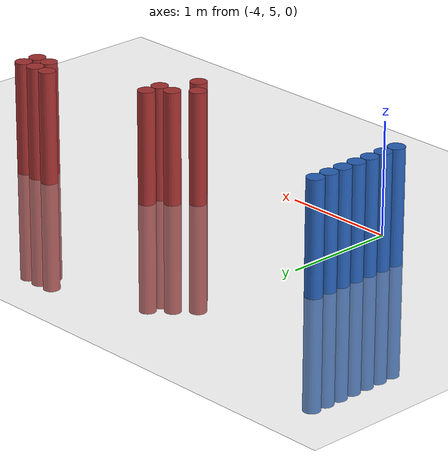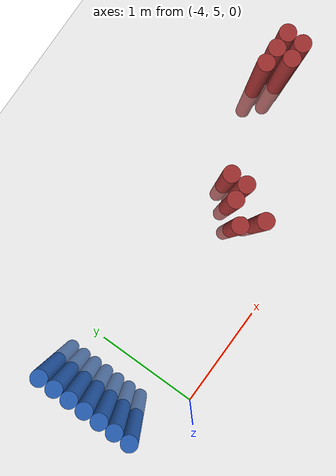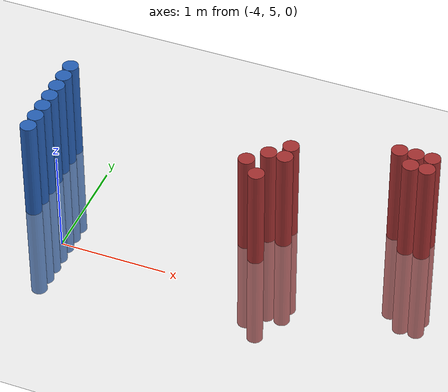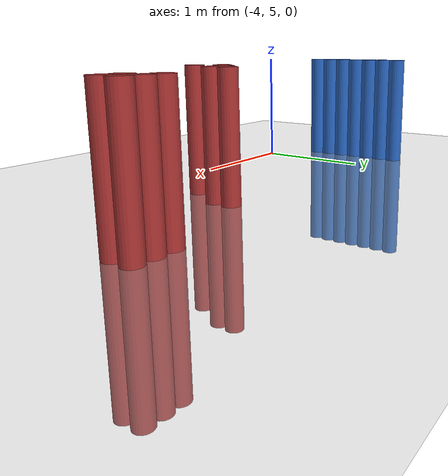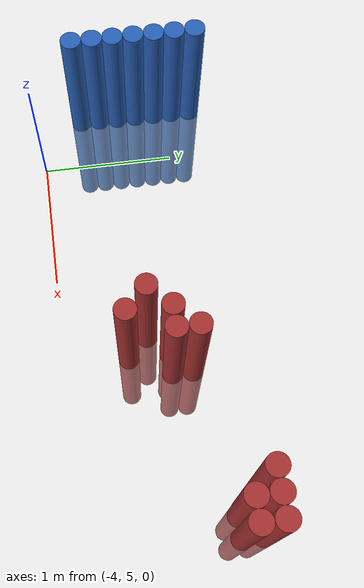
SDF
<sdf version="1.6">
 <world name="default">
  <model name="ground_plane">
   <static>1</static>
   <link name="link">
    <collision name="collision">
     <geometry><plane><normal>0 0 1</normal><size>100 100</size></plane></geometry>
     <surface><friction><ode><mu>100</mu><mu2>50</mu2></ode></friction></surface>
    </collision>
    <visual name="visual">
     <cast_shadows>0</cast_shadows>
     <geometry><plane><normal>0 0 1</normal><size>100 100</size></plane></geometry>
     <material>
      <script><uri>file://media/materials/scripts/gazebo.material</uri><name>Gazebo/Grey</name></script>
     </material>
    </visual>
   </link>
  </model>
  <model name="unit_cylinder_97">
   <static>1</static>
   <pose>-4.425000 5.325000 0.000000 0.000000 0.000000 0.000000</pose>
   <link name="link">
    <inertial>
     <mass>1</mass>
     <inertia><ixx>0.145833</ixx><ixy>0</ixy><ixz>0</ixz><iyy>0.145833</iyy><iyz>0</iyz><izz>0.125</izz></inertia>
    </inertial>
    <collision name="collision">
     <geometry><cylinder><radius>0.075000</radius><length>2</length></cylinder></geometry>
    </collision>
    <visual name="visual">
     <geometry><cylinder><radius>0.075000</radius><length>2</length></cylinder></geometry>
     <material>
      <ambient>0.152000 0.379000 0.720000 1</ambient>
      <diffuse>0.152000 0.379000 0.720000 1</diffuse>
     </material>
     <material>
      <script><name>Gazebo/Grey</name><uri>file://media/materials/scripts/gazebo.material</uri></script>
     </material>
    </visual>
   </link>
  </model>
  <model name="unit_cylinder_98">
   <static>1</static>
   <pose>-4.425000 5.475000 0.000000 0.000000 0.000000 0.000000</pose>
   <link name="link">
    <inertial>
     <mass>1</mass>
     <inertia><ixx>0.145833</ixx><ixy>0</ixy><ixz>0</ixz><iyy>0.145833</iyy><iyz>0</iyz><izz>0.125</izz></inertia>
    </inertial>
    <collision name="collision">
     <geometry><cylinder><radius>0.075000</radius><length>2</length></cylinder></geometry>
    </collision>
    <visual name="visual">
     <geometry><cylinder><radius>0.075000</radius><length>2</length></cylinder></geometry>
     <material>
      <ambient>0.152000 0.379000 0.720000 1</ambient>
      <diffuse>0.152000 0.379000 0.720000 1</diffuse>
     </material>
     <material>
      <script><name>Gazebo/Grey</name><uri>file://media/materials/scripts/gazebo.material</uri></script>
     </material>
    </visual>
   </link>
  </model>
  <model name="unit_cylinder_99">
   <static>1</static>
   <pose>-4.425000 5.625000 0.000000 0.000000 0.000000 0.000000</pose>
   <link name="link">
    <inertial>
     <mass>1</mass>
     <inertia><ixx>0.145833</ixx><ixy>0</ixy><ixz>0</ixz><iyy>0.145833</iyy><iyz>0</iyz><izz>0.125</izz></inertia>
    </inertial>
    <collision name="collision">
     <geometry><cylinder><radius>0.075000</radius><length>2</length></cylinder></geometry>
    </collision>
    <visual name="visual">
     <geometry><cylinder><radius>0.075000</radius><length>2</length></cylinder></geometry>
     <material>
      <ambient>0.152000 0.379000 0.720000 1</ambient>
      <diffuse>0.152000 0.379000 0.720000 1</diffuse>
     </material>
     <material>
      <script><name>Gazebo/Grey</name><uri>file://media/materials/scripts/gazebo.material</uri></script>
     </material>
    </visual>
   </link>
  </model>
  <model name="unit_cylinder_100">
   <static>1</static>
   <pose>-4.425000 5.775000 0.000000 0.000000 0.000000 0.000000</pose>
   <link name="link">
    <inertial>
     <mass>1</mass>
     <inertia><ixx>0.145833</ixx><ixy>0</ixy><ixz>0</ixz><iyy>0.145833</iyy><iyz>0</iyz><izz>0.125</izz></inertia>
    </inertial>
    <collision name="collision">
     <geometry><cylinder><radius>0.075000</radius><length>2</length></cylinder></geometry>
    </collision>
    <visual name="visual">
     <geometry><cylinder><radius>0.075000</radius><length>2</length></cylinder></geometry>
     <material>
      <ambient>0.152000 0.379000 0.720000 1</ambient>
      <diffuse>0.152000 0.379000 0.720000 1</diffuse>
     </material>
     <material>
      <script><name>Gazebo/Grey</name><uri>file://media/materials/scripts/gazebo.material</uri></script>
     </material>
    </visual>
   </link>
  </model>
  <model name="unit_cylinder_101">
   <static>1</static>
   <pose>-4.425000 5.925000 0.000000 0.000000 0.000000 0.000000</pose>
   <link name="link">
    <inertial>
     <mass>1</mass>
     <inertia><ixx>0.145833</ixx><ixy>0</ixy><ixz>0</ixz><iyy>0.145833</iyy><iyz>0</iyz><izz>0.125</izz></inertia>
    </inertial>
    <collision name="collision">
     <geometry><cylinder><radius>0.075000</radius><length>2</length></cylinder></geometry>
    </collision>
    <visual name="visual">
     <geometry><cylinder><radius>0.075000</radius><length>2</length></cylinder></geometry>
     <material>
      <ambient>0.152000 0.379000 0.720000 1</ambient>
      <diffuse>0.152000 0.379000 0.720000 1</diffuse>
     </material>
     <material>
      <script><name>Gazebo/Grey</name><uri>file://media/materials/scripts/gazebo.material</uri></script>
     </material>
    </visual>
   </link>
  </model>
  <model name="unit_cylinder_102">
   <static>1</static>
   <pose>-4.425000 6.075000 0.000000 0.000000 0.000000 0.000000</pose>
   <link name="link">
    <inertial>
     <mass>1</mass>
     <inertia><ixx>0.145833</ixx><ixy>0</ixy><ixz>0</ixz><iyy>0.145833</iyy><iyz>0</iyz><izz>0.125</izz></inertia>
    </inertial>
    <collision name="collision">
     <geometry><cylinder><radius>0.075000</radius><length>2</length></cylinder></geometry>
    </collision>
    <visual name="visual">
     <geometry><cylinder><radius>0.075000</radius><length>2</length></cylinder></geometry>
     <material>
      <ambient>0.152000 0.379000 0.720000 1</ambient>
      <diffuse>0.152000 0.379000 0.720000 1</diffuse>
     </material>
     <material>
      <script><name>Gazebo/Grey</name><uri>file://media/materials/scripts/gazebo.material</uri></script>
     </material>
    </visual>
   </link>
  </model>
  <model name="unit_cylinder_103">
   <static>1</static>
   <pose>-4.425000 6.225000 0.000000 0.000000 0.000000 0.000000</pose>
   <link name="link">
    <inertial>
     <mass>1</mass>
     <inertia><ixx>0.145833</ixx><ixy>0</ixy><ixz>0</ixz><iyy>0.145833</iyy><iyz>0</iyz><izz>0.125</izz></inertia>
    </inertial>
    <collision name="collision">
     <geometry><cylinder><radius>0.075000</radius><length>2</length></cylinder></geometry>
    </collision>
    <visual name="visual">
     <geometry><cylinder><radius>0.075000</radius><length>2</length></cylinder></geometry>
     <material>
      <ambient>0.152000 0.379000 0.720000 1</ambient>
      <diffuse>0.152000 0.379000 0.720000 1</diffuse>
     </material>
     <material>
      <script><name>Gazebo/Grey</name><uri>file://media/materials/scripts/gazebo.material</uri></script>
     </material>
    </visual>
   </link>
  </model>
  <model name="unit_cylinder_148">
   <static>1</static>
   <pose>-2.475000 5.625000 0.000000 0.000000 0.000000 0.000000</pose>
   <link name="link">
    <inertial>
     <mass>1</mass>
     <inertia><ixx>0.145833</ixx><ixy>0</ixy><ixz>0</ixz><iyy>0.145833</iyy><iyz>0</iyz><izz>0.125</izz></inertia>
    </inertial>
    <collision name="collision">
     <geometry><cylinder><radius>0.075000</radius><length>2</length></cylinder></geometry>
    </collision>
    <visual name="visual">
     <geometry><cylinder><radius>0.075000</radius><length>2</length></cylinder></geometry>
     <material>
      <ambient>0.648000 0.192000 0.192000 1</ambient>
      <diffuse>0.648000 0.192000 0.192000 1</diffuse>
     </material>
     <material>
      <script><name>Gazebo/Grey</name><uri>file://media/materials/scripts/gazebo.material</uri></script>
     </material>
    </visual>
   </link>
  </model>
  <model name="unit_cylinder_150">
   <static>1</static>
   <pose>-2.325000 5.475000 0.000000 0.000000 0.000000 0.000000</pose>
   <link name="link">
    <inertial>
     <mass>1</mass>
     <inertia><ixx>0.145833</ixx><ixy>0</ixy><ixz>0</ixz><iyy>0.145833</iyy><iyz>0</iyz><izz>0.125</izz></inertia>
    </inertial>
    <collision name="collision">
     <geometry><cylinder><radius>0.075000</radius><length>2</length></cylinder></geometry>
    </collision>
    <visual name="visual">
     <geometry><cylinder><radius>0.075000</radius><length>2</length></cylinder></geometry>
     <material>
      <ambient>0.648000 0.192000 0.192000 1</ambient>
      <diffuse>0.648000 0.192000 0.192000 1</diffuse>
     </material>
     <material>
      <script><name>Gazebo/Grey</name><uri>file://media/materials/scripts/gazebo.material</uri></script>
     </material>
    </visual>
   </link>
  </model>
  <model name="unit_cylinder_151">
   <static>1</static>
   <pose>-2.325000 5.775000 0.000000 0.000000 0.000000 0.000000</pose>
   <link name="link">
    <inertial>
     <mass>1</mass>
     <inertia><ixx>0.145833</ixx><ixy>0</ixy><ixz>0</ixz><iyy>0.145833</iyy><iyz>0</iyz><izz>0.125</izz></inertia>
    </inertial>
    <collision name="collision">
     <geometry><cylinder><radius>0.075000</radius><length>2</length></cylinder></geometry>
    </collision>
    <visual name="visual">
     <geometry><cylinder><radius>0.075000</radius><length>2</length></cylinder></geometry>
     <material>
      <ambient>0.648000 0.192000 0.192000 1</ambient>
      <diffuse>0.648000 0.192000 0.192000 1</diffuse>
     </material>
     <material>
      <script><name>Gazebo/Grey</name><uri>file://media/materials/scripts/gazebo.material</uri></script>
     </material>
    </visual>
   </link>
  </model>
  <model name="unit_cylinder_152">
   <static>1</static>
   <pose>-2.175000 5.775000 0.000000 0.000000 0.000000 0.000000</pose>
   <link name="link">
    <inertial>
     <mass>1</mass>
     <inertia><ixx>0.145833</ixx><ixy>0</ixy><ixz>0</ixz><iyy>0.145833</iyy><iyz>0</iyz><izz>0.125</izz></inertia>
    </inertial>
    <collision name="collision">
     <geometry><cylinder><radius>0.075000</radius><length>2</length></cylinder></geometry>
    </collision>
    <visual name="visual">
     <geometry><cylinder><radius>0.075000</radius><length>2</length></cylinder></geometry>
     <material>
      <ambient>0.648000 0.192000 0.192000 1</ambient>
      <diffuse>0.648000 0.192000 0.192000 1</diffuse>
     </material>
     <material>
      <script><name>Gazebo/Grey</name><uri>file://media/materials/scripts/gazebo.material</uri></script>
     </material>
    </visual>
   </link>
  </model>
  <model name="unit_cylinder_153">
   <static>1</static>
   <pose>-2.175000 5.925000 0.000000 0.000000 0.000000 0.000000</pose>
   <link name="link">
    <inertial>
     <mass>1</mass>
     <inertia><ixx>0.145833</ixx><ixy>0</ixy><ixz>0</ixz><iyy>0.145833</iyy><iyz>0</iyz><izz>0.125</izz></inertia>
    </inertial>
    <collision name="collision">
     <geometry><cylinder><radius>0.075000</radius><length>2</length></cylinder></geometry>
    </collision>
    <visual name="visual">
     <geometry><cylinder><radius>0.075000</radius><length>2</length></cylinder></geometry>
     <material>
      <ambient>0.648000 0.192000 0.192000 1</ambient>
      <diffuse>0.648000 0.192000 0.192000 1</diffuse>
     </material>
     <material>
      <script><name>Gazebo/Grey</name><uri>file://media/materials/scripts/gazebo.material</uri></script>
     </material>
    </visual>
   </link>
  </model>
  <model name="unit_cylinder_173">
   <static>1</static>
   <pose>-1.275000 6.225000 0.000000 0.000000 0.000000 0.000000</pose>
   <link name="link">
    <inertial>
     <mass>1</mass>
     <inertia><ixx>0.145833</ixx><ixy>0</ixy><ixz>0</ixz><iyy>0.145833</iyy><iyz>0</iyz><izz>0.125</izz></inertia>
    </inertial>
    <collision name="collision">
     <geometry><cylinder><radius>0.075000</radius><length>2</length></cylinder></geometry>
    </collision>
    <visual name="visual">
     <geometry><cylinder><radius>0.075000</radius><length>2</length></cylinder></geometry>
     <material>
      <ambient>0.648000 0.192000 0.192000 1</ambient>
      <diffuse>0.648000 0.192000 0.192000 1</diffuse>
     </material>
     <material>
      <script><name>Gazebo/Grey</name><uri>file://media/materials/scripts/gazebo.material</uri></script>
     </material>
    </visual>
   </link>
  </model>
  <model name="unit_cylinder_175">
   <static>1</static>
   <pose>-1.125000 6.075000 0.000000 0.000000 0.000000 0.000000</pose>
   <link name="link">
    <inertial>
     <mass>1</mass>
     <inertia><ixx>0.145833</ixx><ixy>0</ixy><ixz>0</ixz><iyy>0.145833</iyy><iyz>0</iyz><izz>0.125</izz></inertia>
    </inertial>
    <collision name="collision">
     <geometry><cylinder><radius>0.075000</radius><length>2</length></cylinder></geometry>
    </collision>
    <visual name="visual">
     <geometry><cylinder><radius>0.075000</radius><length>2</length></cylinder></geometry>
     <material>
      <ambient>0.648000 0.192000 0.192000 1</ambient>
      <diffuse>0.648000 0.192000 0.192000 1</diffuse>
     </material>
     <material>
      <script><name>Gazebo/Grey</name><uri>file://media/materials/scripts/gazebo.material</uri></script>
     </material>
    </visual>
   </link>
  </model>
  <model name="unit_cylinder_176">
   <static>1</static>
   <pose>-1.125000 6.225000 0.000000 0.000000 0.000000 0.000000</pose>
   <link name="link">
    <inertial>
     <mass>1</mass>
     <inertia><ixx>0.145833</ixx><ixy>0</ixy><ixz>0</ixz><iyy>0.145833</iyy><iyz>0</iyz><izz>0.125</izz></inertia>
    </inertial>
    <collision name="collision">
     <geometry><cylinder><radius>0.075000</radius><length>2</length></cylinder></geometry>
    </collision>
    <visual name="visual">
     <geometry><cylinder><radius>0.075000</radius><length>2</length></cylinder></geometry>
     <material>
      <ambient>0.648000 0.192000 0.192000 1</ambient>
      <diffuse>0.648000 0.192000 0.192000 1</diffuse>
     </material>
     <material>
      <script><name>Gazebo/Grey</name><uri>file://media/materials/scripts/gazebo.material</uri></script>
     </material>
    </visual>
   </link>
  </model>
  <model name="unit_cylinder_180">
   <static>1</static>
   <pose>-0.975000 6.075000 0.000000 0.000000 0.000000 0.000000</pose>
   <link name="link">
    <inertial>
     <mass>1</mass>
     <inertia><ixx>0.145833</ixx><ixy>0</ixy><ixz>0</ixz><iyy>0.145833</iyy><iyz>0</iyz><izz>0.125</izz></inertia>
    </inertial>
    <collision name="collision">
     <geometry><cylinder><radius>0.075000</radius><length>2</length></cylinder></geometry>
    </collision>
    <visual name="visual">
     <geometry><cylinder><radius>0.075000</radius><length>2</length></cylinder></geometry>
     <material>
      <ambient>0.648000 0.192000 0.192000 1</ambient>
      <diffuse>0.648000 0.192000 0.192000 1</diffuse>
     </material>
     <material>
      <script><name>Gazebo/Grey</name><uri>file://media/materials/scripts/gazebo.material</uri></script>
     </material>
    </visual>
   </link>
  </model>
  <model name="unit_cylinder_181">
   <static>1</static>
   <pose>-0.975000 6.225000 0.000000 0.000000 0.000000 0.000000</pose>
   <link name="link">
    <inertial>
     <mass>1</mass>
     <inertia><ixx>0.145833</ixx><ixy>0</ixy><ixz>0</ixz><iyy>0.145833</iyy><iyz>0</iyz><izz>0.125</izz></inertia>
    </inertial>
    <collision name="collision">
     <geometry><cylinder><radius>0.075000</radius><length>2</length></cylinder></geometry>
    </collision>
    <visual name="visual">
     <geometry><cylinder><radius>0.075000</radius><length>2</length></cylinder></geometry>
     <material>
      <ambient>0.648000 0.192000 0.192000 1</ambient>
      <diffuse>0.648000 0.192000 0.192000 1</diffuse>
     </material>
     <material>
      <script><name>Gazebo/Grey</name><uri>file://media/materials/scripts/gazebo.material</uri></script>
     </material>
    </visual>
   </link>
  </model>
 </world>
</sdf>
